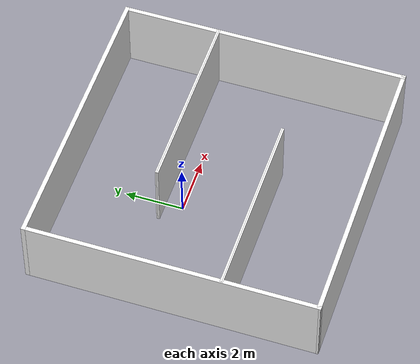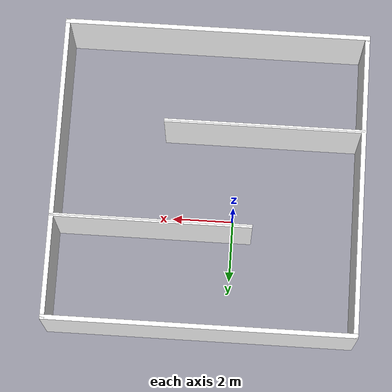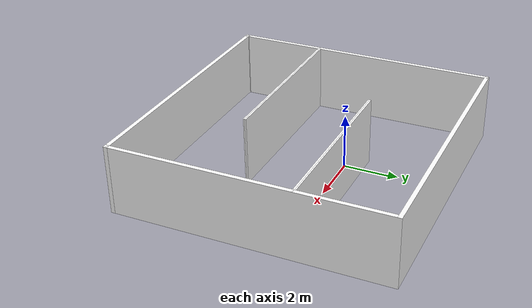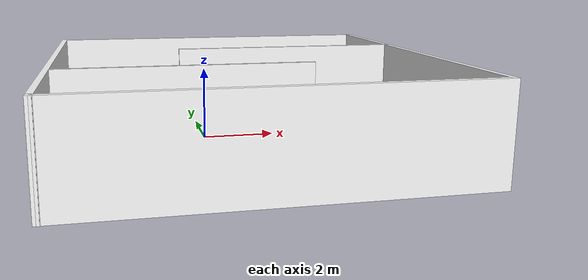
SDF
<?xml version='1.0'?>
<sdf version='1.7'>
  <model name='my_walls_3'>
    <pose>0.858667 -0.976222 0 0 -0 0</pose>
    <link name='Wall_0'>
      <collision name='Wall_0_Collision'>
        <geometry>
          <box>
            <size>10 0.15 2.5</size>
          </box>
        </geometry>
        <pose>0 0 1.25 0 -0 0</pose>
      </collision>
      <visual name='Wall_0_Visual'>
        <pose>0 0 1.25 0 -0 0</pose>
        <geometry>
          <box>
            <size>10 0.15 2.5</size>
          </box>
        </geometry>
        <material>
          <script>
            <uri>model://my_walls_3/materials/scripts</uri>
            <uri>model://my_walls_3/materials/textures</uri>
            <name>vrc/pic_1</name>
          </script>
          <ambient>1 1 1 1</ambient>
        </material>
        <meta>
          <layer>0</layer>
        </meta>
      </visual>
      <pose>-4.91962 0.005377 0 0 -0 -1.5708</pose>
    </link>

    <link name='Wall_11'>
      <collision name='Wall_11_Collision'>
        <geometry>
          <box>
            <size>6.5 0.06 2.5</size>
          </box>
        </geometry>
        <pose>0 0 1.25 0 -0 0</pose>
      </collision>
      <visual name='Wall_11_Visual'>
        <pose>0 0 1.25 0 -0 0</pose>
        <geometry>
          <box>
            <size>6.5 0.06 2.5</size>
          </box>
        </geometry>
        <material>
          <script>
            <uri>model://my_walls_3/materials/scripts</uri>
            <uri>model://my_walls_3/materials/textures</uri>
            <name>vrc/pic_2</name>
          </script>
          <ambient>1 1 1 1</ambient>
        </material>
        <meta>
          <layer>0</layer>
        </meta>
      </visual>
      <pose>1.75323 1.6 0 0 -0 3.14159</pose>
    </link>

    <link name='Wall_11a'>
      <collision name='Wall_11a_Collision'>
        <geometry>
          <box>
            <size>6.5 0.06 2.5</size>
          </box>
        </geometry>
        <pose>0 0 1.25 0 -0 0</pose>
      </collision>
      <visual name='Wall_11a_Visual'>
        <pose>0 0 1.25 0 -0 0</pose>
        <geometry>
          <box>
            <size>6.5 0.06 2.5</size>
          </box>
        </geometry>
        <material>
          <script>
            <uri>model://my_walls_3/materials/scripts</uri>
            <uri>model://my_walls_3/materials/textures</uri>
            <name>vrc/pic_9</name>
          </script>
          <ambient>1 1 1 1</ambient>
        </material>
        <meta>
          <layer>0</layer>
        </meta>
      </visual>
      <pose>1.75323 1.65 0 0 -0 3.14159</pose>
    </link>

    <link name='Wall_2'>
      <collision name='Wall_2_Collision'>
        <geometry>
          <box>
            <size>10 0.15 2.5</size>
          </box>
        </geometry>
        <pose>0 0 1.25 0 -0 0</pose>
      </collision>
      <visual name='Wall_2_Visual'>
        <pose>0 0 1.25 0 -0 0</pose>
        <geometry>
          <box>
            <size>10 0.15 2.5</size>
          </box>
        </geometry>
        <material>
          <script>
            <uri>model://my_walls_3/materials/scripts</uri>
            <uri>model://my_walls_3/materials/textures</uri>
            <name>vrc/pic_3</name>
          </script>
          <ambient>1 1 1 1</ambient>
        </material>
        <meta>
          <layer>0</layer>
        </meta>
      </visual>
      <pose>0.005377 4.93038 0 0 -0 0</pose>
    </link>
    <link name='Wall_3'>
      <collision name='Wall_3_Collision'>
        <geometry>
          <box>
            <size>10 0.15 2.5</size>
          </box>
        </geometry>
        <pose>0 0 1.25 0 -0 0</pose>
      </collision>
      <visual name='Wall_3_Visual'>
        <pose>0 0 1.25 0 -0 0</pose>
        <geometry>
          <box>
            <size>10 0.15 2.5</size>
          </box>
        </geometry>
        <material>
          <script>
            <uri>model://my_walls_3/materials/scripts</uri>
            <uri>model://my_walls_3/materials/textures</uri>
            <name>vrc/pic_4</name>
          </script>
          <ambient>1 1 1 1</ambient>
        </material>
        <meta>
          <layer>0</layer>
        </meta>
      </visual>
      <pose>4.93038 0.005377 0 0 -0 -1.5708</pose>
    </link>
    <link name='Wall_4'>
      <collision name='Wall_4_Collision'>
        <geometry>
          <box>
            <size>10 0.15 2.5</size>
          </box>
        </geometry>
        <pose>0 0 1.25 0 -0 0</pose>
      </collision>
      <visual name='Wall_4_Visual'>
        <pose>0 0 1.25 0 -0 0</pose>
        <geometry>
          <box>
            <size>10 0.15 2.5</size>
          </box>
        </geometry>
        <material>
          <script>
            <uri>model://my_walls_3/materials/scripts</uri>
            <uri>model://my_walls_3/materials/textures</uri>
            <name>vrc/pic_5</name>
          </script>
          <ambient>1 1 1 1</ambient>
        </material>
        <meta>
          <layer>0</layer>
        </meta>
      </visual>
      <pose>0.005377 -4.91962 0 0 -0 3.14159</pose>
    </link>
    <link name='Wall_7'>
      <collision name='Wall_7_Collision'>
        <geometry>
          <box>
            <size>0.177097 0.15 2.5</size>
          </box>
        </geometry>
        <pose>0 0 1.25 0 -0 0</pose>
      </collision>
      <visual name='Wall_7_Visual'>
        <pose>0 0 1.25 0 -0 0</pose>
        <geometry>
          <box>
            <size>0.177097 0.15 2.5</size>
          </box>
        </geometry>
        <material>
          <script>
            <uri>model://my_walls_3/materials/scripts</uri>
            <uri>model://my_walls_3/materials/textures</uri>
            <name>vrc/pic_6</name>
          </script>
          <ambient>1 1 1 1</ambient>
        </material>
        <meta>
          <layer>0</layer>
        </meta>
      </visual>
      <pose>-4.91752 -4.90624 0 0 -0 1.4146</pose>
    </link>

    <link name='Wall_9'>
      <collision name='Wall_9_Collision'>
        <geometry>
          <box>
            <size>6.5 0.06 2.5</size>
          </box>
        </geometry>
        <pose>0 0 1.25 0 -0 0</pose>
      </collision>
      <visual name='Wall_9_Visual'>
        <pose>0 0 1.25 0 -0 0</pose>
        <geometry>
          <box>
            <size>6.5 0.06 2.5</size>
          </box>
        </geometry>
        <material>
          <script>
            <uri>model://my_walls_3/materials/scripts</uri>
            <uri>model://my_walls_3/materials/textures</uri>
            <name>vrc/pic_7</name>
          </script>
          <ambient>1 1 1 1</ambient>
        </material>
        <meta>
          <layer>0</layer>
        </meta>
      </visual>
      <pose>-1.70415 -1.7 0 0 -0 0</pose>
    </link>

    <link name='Wall_9a'>
      <collision name='Wall_9a_Collision'>
        <geometry>
          <box>
            <size>6.5 0.06 2.5</size>
          </box>
        </geometry>
        <pose>0 0 1.25 0 -0 0</pose>
      </collision>
      <visual name='Wall_9a_Visual'>
        <pose>0 0 1.25 0 -0 0</pose>
        <geometry>
          <box>
            <size>6.5 0.06 2.5</size>
          </box>
        </geometry>
        <material>
          <script>
            <uri>model://my_walls_3/materials/scripts</uri>
            <uri>model://my_walls_3/materials/textures</uri>
            <name>vrc/pic_8</name>
          </script>
          <ambient>1 1 1 1</ambient>
        </material>
        <meta>
          <layer>0</layer>
        </meta>
      </visual>
      <pose>-1.70415 -1.75 0 0 -0 0</pose>
    </link>

    <static>1</static>
  </model>
</sdf>
